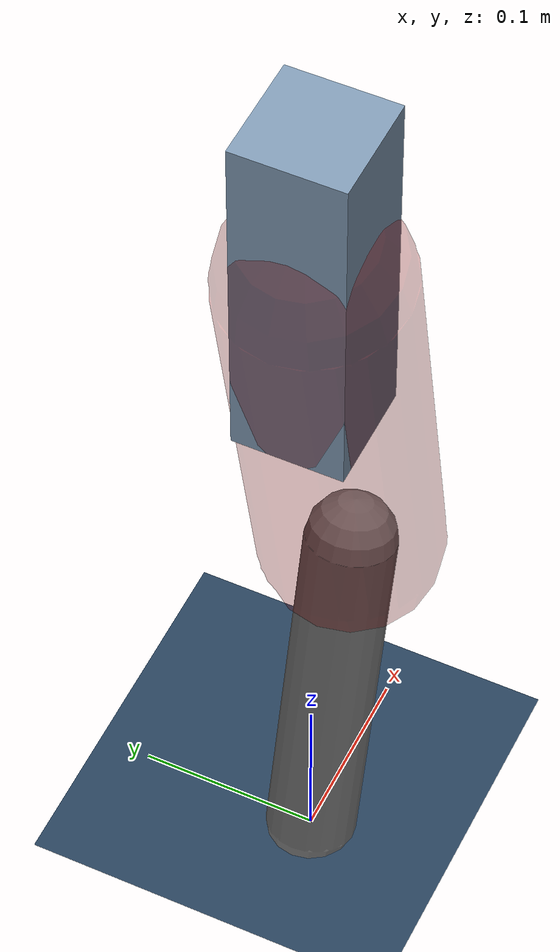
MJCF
<mujoco model="Hopper2D">
	<compiler inertiafromgeom="true" angle="radian" />
	<option timestep="0.001" integrator="implicit" cone="elliptic" solver="Newton" tolerance="1e-10" />

	<default>
		<geom contype="1" conaffinity="1" condim="3" friction="2 0.005 0.0001" solref="0.005 1" />
		<joint limited="true" damping="0.1" />
	</default>

	<asset>
		<texture name="skybox" type="skybox" builtin="gradient" rgb1=".4 .6 .8" rgb2="0 0 0" width="800" height="800" />
		<texture name="grid" type="2d" builtin="checker" rgb1=".1 .2 .3" rgb2=".2 .3 .4" width="300" height="300" mark="edge" markrgb=".2 .3 .4" />
		<material name="ground" texture="grid" texrepeat="1 1" texuniform="true" reflectance="0.1" />
		<material name="leg" rgba="0.5 0.6 0.7 1" />
	</asset>

	<worldbody>

		<geom name="floor" type="plane" size="5 5 0.25" material="ground" />

		<light directional="false" diffuse="0.8 0.8 0.8" specular="0.3 0.3 0.3" pos="0 0 2" dir="0 0 -1" />
		<light mode="targetbodycom" target="base" directional="false" diffuse="0.8 0.8 0.8" specular="0.3 0.3 0.3" pos="0 0 2" dir="0 0 -1" />

		<camera name="fixed" pos="0 -2 1" xyaxes="1 0 0 0 0 1" />
		<camera name="tracking" mode="trackcom" pos="0 -3 1" />

		<body name="root" pos="0 0 0.4455129701254222">
			<joint name="slide_x" type="slide" axis="1 0 0" range="-100 100" />
			<joint name="slide_z" type="slide" axis="0 0 1" range="0 10" />

			<body name="base" pos="0 0 0">
				<geom name="torso" type="box" size="0.03 0.03 0.1" mass="2.839" material="leg" />

				<body name="link1" pos="0 0 0" euler="0 1.3814447075614542 0">
					<joint type="hinge" axis="0 -1 0" pos="0 0 0" name="hinge1" limited="true" range="-3.14 3.14" stiffness="0" damping="0.1" />
					<geom name="thigh" type="capsule" fromto="0 0 0 0.2508021309656237 0 0" size="0.05" rgba="0.5 0 0 0.3" mass="0.8584855405106216" />

					<body name="link2" pos="0.2508021309656237 0 0" euler="0 0.42204685457748486 0">
						<joint type="hinge" axis="0 -1 0" pos="0 0 0" name="hinge2" limited="true" range="-3.14 3.14" stiffness="0" damping="0.1" />
						<geom name="shank" type="capsule" fromto="0 0 0 0.20471083915979849 0 0" size="0.025" mass="0.4048686713278388" />

					</body>
				</body>
			</body>
		</body>
	</worldbody>

	<actuator>
		<motor name="torque1" joint="hinge1" ctrlrange="-152.31318534796065 152.31318534796065" ctrllimited="true" gear="1" />
		<motor name="torque2" joint="hinge2" ctrlrange="-32.12885989768977 32.12885989768977" ctrllimited="true" gear="1" />
	</actuator>
</mujoco>
